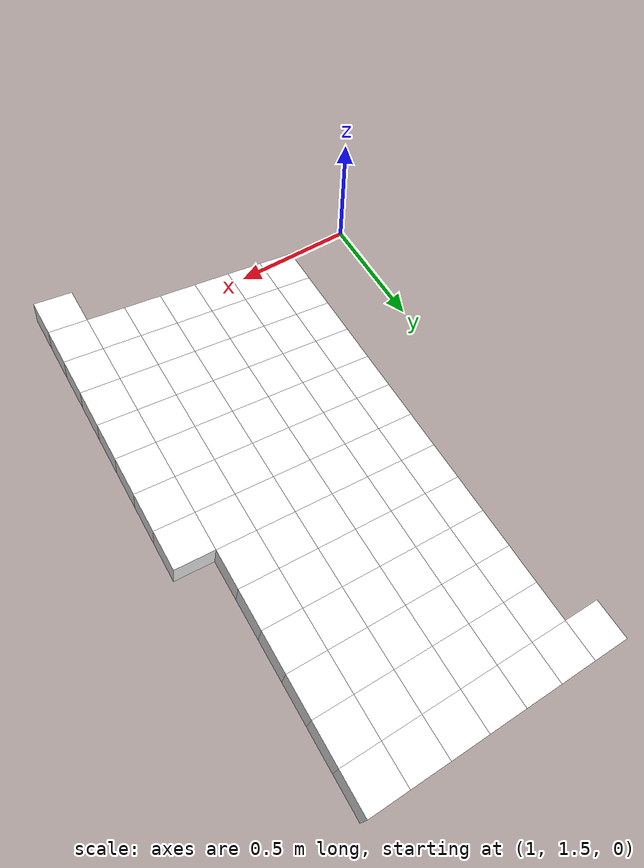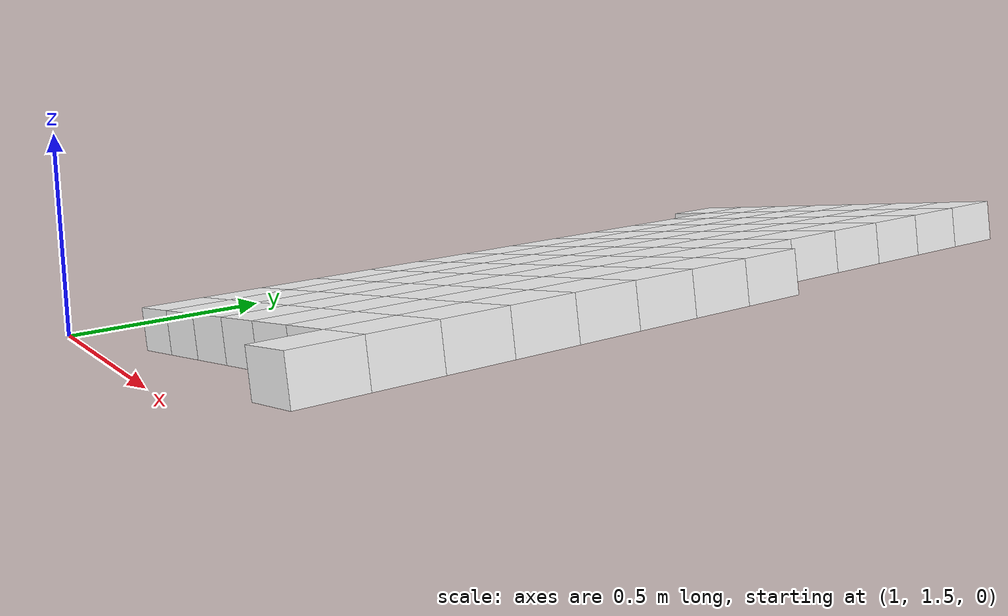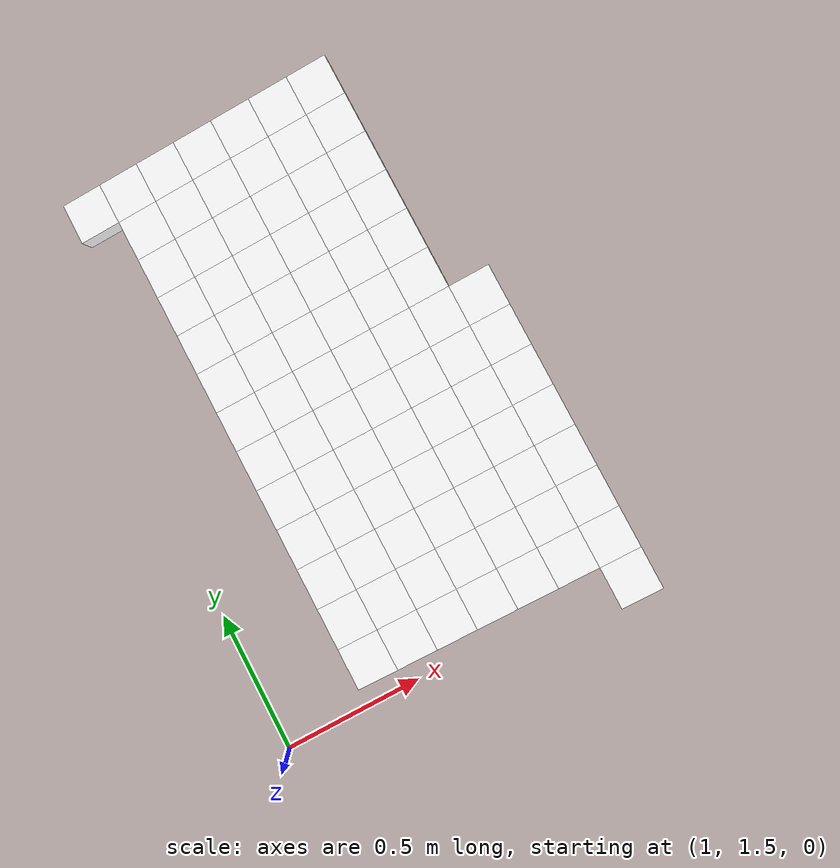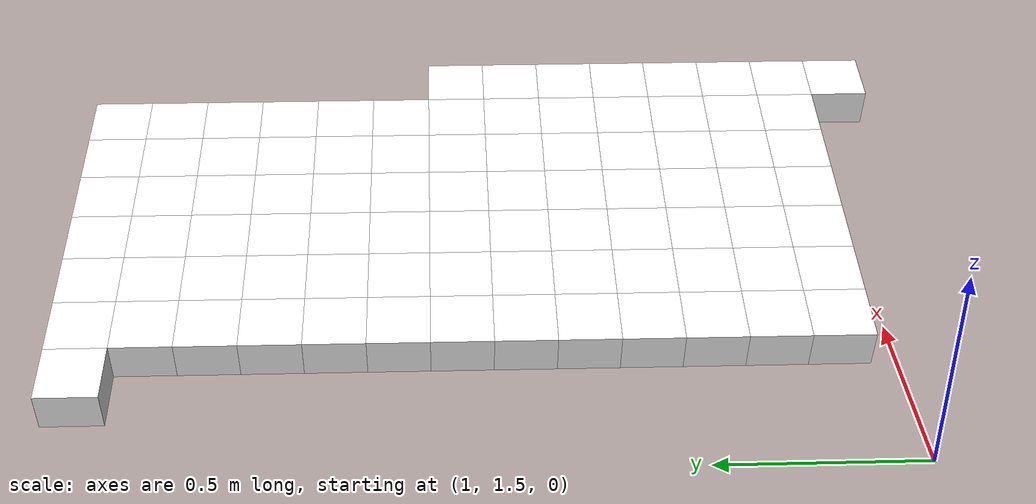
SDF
<sdf version="1.7">
 <world name="default">
  <include><uri>model://sun</uri></include>
  <model name="static_environment">
   <static>true</static>
   <link name="region_469">
    <pose>2.2721418591427653 1.5 0.24759631532031606 0.0 -0.175 0.0</pose>
    <collision name="region_469_collision">
     <geometry><box><size>0.15 0.15 0.1</size></box></geometry>
     <surface><friction><ode><mu>1.0</mu><mu2>1.0</mu2></ode></friction></surface>
    </collision>
    <visual name="region_469_visual">
     <geometry><box><size>0.15 0.15 0.1</size></box></geometry>
     <material><ambient>1.0 1.0 1.0 1.0</ambient><diffuse>1.0 1.0 1.0 1.0</diffuse></material>
    </visual>
   </link>
   <link name="region_473">
    <pose>1.3858879741283245 1.65 0.09089899148607966 0.0 -0.175 0.0</pose>
    <collision name="region_473_collision">
     <geometry><box><size>0.15 0.15 0.1</size></box></geometry>
     <surface><friction><ode><mu>1.0</mu><mu2>1.0</mu2></ode></friction></surface>
    </collision>
    <visual name="region_473_visual">
     <geometry><box><size>0.15 0.15 0.1</size></box></geometry>
     <material><ambient>1.0 1.0 1.0 1.0</ambient><diffuse>1.0 1.0 1.0 1.0</diffuse></material>
    </visual>
   </link>
   <link name="region_474">
    <pose>1.5335969549640645 1.65 0.11701521212511906 0.0 -0.175 0.0</pose>
    <collision name="region_474_collision">
     <geometry><box><size>0.15 0.15 0.1</size></box></geometry>
     <surface><friction><ode><mu>1.0</mu><mu2>1.0</mu2></ode></friction></surface>
    </collision>
    <visual name="region_474_visual">
     <geometry><box><size>0.15 0.15 0.1</size></box></geometry>
     <material><ambient>1.0 1.0 1.0 1.0</ambient><diffuse>1.0 1.0 1.0 1.0</diffuse></material>
    </visual>
   </link>
   <link name="region_475">
    <pose>1.6813059357998044 1.65 0.14313143276415835 0.0 -0.175 0.0</pose>
    <collision name="region_475_collision">
     <geometry><box><size>0.15 0.15 0.1</size></box></geometry>
     <surface><friction><ode><mu>1.0</mu><mu2>1.0</mu2></ode></friction></surface>
    </collision>
    <visual name="region_475_visual">
     <geometry><box><size>0.15 0.15 0.1</size></box></geometry>
     <material><ambient>1.0 1.0 1.0 1.0</ambient><diffuse>1.0 1.0 1.0 1.0</diffuse></material>
    </visual>
   </link>
   <link name="region_476">
    <pose>1.8290149166355443 1.65 0.16924765340319775 0.0 -0.175 0.0</pose>
    <collision name="region_476_collision">
     <geometry><box><size>0.15 0.15 0.1</size></box></geometry>
     <surface><friction><ode><mu>1.0</mu><mu2>1.0</mu2></ode></friction></surface>
    </collision>
    <visual name="region_476_visual">
     <geometry><box><size>0.15 0.15 0.1</size></box></geometry>
     <material><ambient>1.0 1.0 1.0 1.0</ambient><diffuse>1.0 1.0 1.0 1.0</diffuse></material>
    </visual>
   </link>
   <link name="region_477">
    <pose>1.9767238974712842 1.65 0.19536387404223715 0.0 -0.175 0.0</pose>
    <collision name="region_477_collision">
     <geometry><box><size>0.15 0.15 0.1</size></box></geometry>
     <surface><friction><ode><mu>1.0</mu><mu2>1.0</mu2></ode></friction></surface>
    </collision>
    <visual name="region_477_visual">
     <geometry><box><size>0.15 0.15 0.1</size></box></geometry>
     <material><ambient>1.0 1.0 1.0 1.0</ambient><diffuse>1.0 1.0 1.0 1.0</diffuse></material>
    </visual>
   </link>
   <link name="region_478">
    <pose>2.124432878307025 1.65 0.22148009468127655 0.0 -0.175 0.0</pose>
    <collision name="region_478_collision">
     <geometry><box><size>0.15 0.15 0.1</size></box></geometry>
     <surface><friction><ode><mu>1.0</mu><mu2>1.0</mu2></ode></friction></surface>
    </collision>
    <visual name="region_478_visual">
     <geometry><box><size>0.15 0.15 0.1</size></box></geometry>
     <material><ambient>1.0 1.0 1.0 1.0</ambient><diffuse>1.0 1.0 1.0 1.0</diffuse></material>
    </visual>
   </link>
   <link name="region_479">
    <pose>2.2721418591427653 1.65 0.24759631532031606 0.0 -0.175 0.0</pose>
    <collision name="region_479_collision">
     <geometry><box><size>0.15 0.15 0.1</size></box></geometry>
     <surface><friction><ode><mu>1.0</mu><mu2>1.0</mu2></ode></friction></surface>
    </collision>
    <visual name="region_479_visual">
     <geometry><box><size>0.15 0.15 0.1</size></box></geometry>
     <material><ambient>1.0 1.0 1.0 1.0</ambient><diffuse>1.0 1.0 1.0 1.0</diffuse></material>
    </visual>
   </link>
   <link name="region_483">
    <pose>1.3858879741283245 1.7999999999999998 0.09089899148607966 0.0 -0.175 0.0</pose>
    <collision name="region_483_collision">
     <geometry><box><size>0.15 0.15 0.1</size></box></geometry>
     <surface><friction><ode><mu>1.0</mu><mu2>1.0</mu2></ode></friction></surface>
    </collision>
    <visual name="region_483_visual">
     <geometry><box><size>0.15 0.15 0.1</size></box></geometry>
     <material><ambient>1.0 1.0 1.0 1.0</ambient><diffuse>1.0 1.0 1.0 1.0</diffuse></material>
    </visual>
   </link>
   <link name="region_484">
    <pose>1.5335969549640645 1.7999999999999998 0.11701521212511906 0.0 -0.175 0.0</pose>
    <collision name="region_484_collision">
     <geometry><box><size>0.15 0.15 0.1</size></box></geometry>
     <surface><friction><ode><mu>1.0</mu><mu2>1.0</mu2></ode></friction></surface>
    </collision>
    <visual name="region_484_visual">
     <geometry><box><size>0.15 0.15 0.1</size></box></geometry>
     <material><ambient>1.0 1.0 1.0 1.0</ambient><diffuse>1.0 1.0 1.0 1.0</diffuse></material>
    </visual>
   </link>
   <link name="region_485">
    <pose>1.6813059357998044 1.7999999999999998 0.14313143276415835 0.0 -0.175 0.0</pose>
    <collision name="region_485_collision">
     <geometry><box><size>0.15 0.15 0.1</size></box></geometry>
     <surface><friction><ode><mu>1.0</mu><mu2>1.0</mu2></ode></friction></surface>
    </collision>
    <visual name="region_485_visual">
     <geometry><box><size>0.15 0.15 0.1</size></box></geometry>
     <material><ambient>1.0 1.0 1.0 1.0</ambient><diffuse>1.0 1.0 1.0 1.0</diffuse></material>
    </visual>
   </link>
   <link name="region_486">
    <pose>1.8290149166355443 1.7999999999999998 0.16924765340319775 0.0 -0.175 0.0</pose>
    <collision name="region_486_collision">
     <geometry><box><size>0.15 0.15 0.1</size></box></geometry>
     <surface><friction><ode><mu>1.0</mu><mu2>1.0</mu2></ode></friction></surface>
    </collision>
    <visual name="region_486_visual">
     <geometry><box><size>0.15 0.15 0.1</size></box></geometry>
     <material><ambient>1.0 1.0 1.0 1.0</ambient><diffuse>1.0 1.0 1.0 1.0</diffuse></material>
    </visual>
   </link>
   <link name="region_487">
    <pose>1.9767238974712842 1.7999999999999998 0.19536387404223715 0.0 -0.175 0.0</pose>
    <collision name="region_487_collision">
     <geometry><box><size>0.15 0.15 0.1</size></box></geometry>
     <surface><friction><ode><mu>1.0</mu><mu2>1.0</mu2></ode></friction></surface>
    </collision>
    <visual name="region_487_visual">
     <geometry><box><size>0.15 0.15 0.1</size></box></geometry>
     <material><ambient>1.0 1.0 1.0 1.0</ambient><diffuse>1.0 1.0 1.0 1.0</diffuse></material>
    </visual>
   </link>
   <link name="region_488">
    <pose>2.124432878307025 1.7999999999999998 0.22148009468127655 0.0 -0.175 0.0</pose>
    <collision name="region_488_collision">
     <geometry><box><size>0.15 0.15 0.1</size></box></geometry>
     <surface><friction><ode><mu>1.0</mu><mu2>1.0</mu2></ode></friction></surface>
    </collision>
    <visual name="region_488_visual">
     <geometry><box><size>0.15 0.15 0.1</size></box></geometry>
     <material><ambient>1.0 1.0 1.0 1.0</ambient><diffuse>1.0 1.0 1.0 1.0</diffuse></material>
    </visual>
   </link>
   <link name="region_489">
    <pose>2.2721418591427653 1.7999999999999998 0.24759631532031606 0.0 -0.175 0.0</pose>
    <collision name="region_489_collision">
     <geometry><box><size>0.15 0.15 0.1</size></box></geometry>
     <surface><friction><ode><mu>1.0</mu><mu2>1.0</mu2></ode></friction></surface>
    </collision>
    <visual name="region_489_visual">
     <geometry><box><size>0.15 0.15 0.1</size></box></geometry>
     <material><ambient>1.0 1.0 1.0 1.0</ambient><diffuse>1.0 1.0 1.0 1.0</diffuse></material>
    </visual>
   </link>
   <link name="region_493">
    <pose>1.3858879741283245 1.9499999999999997 0.09089899148607966 0.0 -0.175 0.0</pose>
    <collision name="region_493_collision">
     <geometry><box><size>0.15 0.15 0.1</size></box></geometry>
     <surface><friction><ode><mu>1.0</mu><mu2>1.0</mu2></ode></friction></surface>
    </collision>
    <visual name="region_493_visual">
     <geometry><box><size>0.15 0.15 0.1</size></box></geometry>
     <material><ambient>1.0 1.0 1.0 1.0</ambient><diffuse>1.0 1.0 1.0 1.0</diffuse></material>
    </visual>
   </link>
   <link name="region_494">
    <pose>1.5335969549640645 1.9499999999999997 0.11701521212511906 0.0 -0.175 0.0</pose>
    <collision name="region_494_collision">
     <geometry><box><size>0.15 0.15 0.1</size></box></geometry>
     <surface><friction><ode><mu>1.0</mu><mu2>1.0</mu2></ode></friction></surface>
    </collision>
    <visual name="region_494_visual">
     <geometry><box><size>0.15 0.15 0.1</size></box></geometry>
     <material><ambient>1.0 1.0 1.0 1.0</ambient><diffuse>1.0 1.0 1.0 1.0</diffuse></material>
    </visual>
   </link>
   <link name="region_495">
    <pose>1.6813059357998044 1.9499999999999997 0.14313143276415835 0.0 -0.175 0.0</pose>
    <collision name="region_495_collision">
     <geometry><box><size>0.15 0.15 0.1</size></box></geometry>
     <surface><friction><ode><mu>1.0</mu><mu2>1.0</mu2></ode></friction></surface>
    </collision>
    <visual name="region_495_visual">
     <geometry><box><size>0.15 0.15 0.1</size></box></geometry>
     <material><ambient>1.0 1.0 1.0 1.0</ambient><diffuse>1.0 1.0 1.0 1.0</diffuse></material>
    </visual>
   </link>
   <link name="region_496">
    <pose>1.8290149166355443 1.9499999999999997 0.16924765340319775 0.0 -0.175 0.0</pose>
    <collision name="region_496_collision">
     <geometry><box><size>0.15 0.15 0.1</size></box></geometry>
     <surface><friction><ode><mu>1.0</mu><mu2>1.0</mu2></ode></friction></surface>
    </collision>
    <visual name="region_496_visual">
     <geometry><box><size>0.15 0.15 0.1</size></box></geometry>
     <material><ambient>1.0 1.0 1.0 1.0</ambient><diffuse>1.0 1.0 1.0 1.0</diffuse></material>
    </visual>
   </link>
   <link name="region_497">
    <pose>1.9767238974712842 1.9499999999999997 0.19536387404223715 0.0 -0.175 0.0</pose>
    <collision name="region_497_collision">
     <geometry><box><size>0.15 0.15 0.1</size></box></geometry>
     <surface><friction><ode><mu>1.0</mu><mu2>1.0</mu2></ode></friction></surface>
    </collision>
    <visual name="region_497_visual">
     <geometry><box><size>0.15 0.15 0.1</size></box></geometry>
     <material><ambient>1.0 1.0 1.0 1.0</ambient><diffuse>1.0 1.0 1.0 1.0</diffuse></material>
    </visual>
   </link>
   <link name="region_498">
    <pose>2.124432878307025 1.9499999999999997 0.22148009468127655 0.0 -0.175 0.0</pose>
    <collision name="region_498_collision">
     <geometry><box><size>0.15 0.15 0.1</size></box></geometry>
     <surface><friction><ode><mu>1.0</mu><mu2>1.0</mu2></ode></friction></surface>
    </collision>
    <visual name="region_498_visual">
     <geometry><box><size>0.15 0.15 0.1</size></box></geometry>
     <material><ambient>1.0 1.0 1.0 1.0</ambient><diffuse>1.0 1.0 1.0 1.0</diffuse></material>
    </visual>
   </link>
   <link name="region_499">
    <pose>2.2721418591427653 1.9499999999999997 0.24759631532031606 0.0 -0.175 0.0</pose>
    <collision name="region_499_collision">
     <geometry><box><size>0.15 0.15 0.1</size></box></geometry>
     <surface><friction><ode><mu>1.0</mu><mu2>1.0</mu2></ode></friction></surface>
    </collision>
    <visual name="region_499_visual">
     <geometry><box><size>0.15 0.15 0.1</size></box></geometry>
     <material><ambient>1.0 1.0 1.0 1.0</ambient><diffuse>1.0 1.0 1.0 1.0</diffuse></material>
    </visual>
   </link>
   <link name="region_503">
    <pose>1.3858879741283245 2.0999999999999996 0.09089899148607966 0.0 -0.175 0.0</pose>
    <collision name="region_503_collision">
     <geometry><box><size>0.15 0.15 0.1</size></box></geometry>
     <surface><friction><ode><mu>1.0</mu><mu2>1.0</mu2></ode></friction></surface>
    </collision>
    <visual name="region_503_visual">
     <geometry><box><size>0.15 0.15 0.1</size></box></geometry>
     <material><ambient>1.0 1.0 1.0 1.0</ambient><diffuse>1.0 1.0 1.0 1.0</diffuse></material>
    </visual>
   </link>
   <link name="region_504">
    <pose>1.5335969549640645 2.0999999999999996 0.11701521212511906 0.0 -0.175 0.0</pose>
    <collision name="region_504_collision">
     <geometry><box><size>0.15 0.15 0.1</size></box></geometry>
     <surface><friction><ode><mu>1.0</mu><mu2>1.0</mu2></ode></friction></surface>
    </collision>
    <visual name="region_504_visual">
     <geometry><box><size>0.15 0.15 0.1</size></box></geometry>
     <material><ambient>1.0 1.0 1.0 1.0</ambient><diffuse>1.0 1.0 1.0 1.0</diffuse></material>
    </visual>
   </link>
   <link name="region_505">
    <pose>1.6813059357998044 2.0999999999999996 0.14313143276415835 0.0 -0.175 0.0</pose>
    <collision name="region_505_collision">
     <geometry><box><size>0.15 0.15 0.1</size></box></geometry>
     <surface><friction><ode><mu>1.0</mu><mu2>1.0</mu2></ode></friction></surface>
    </collision>
    <visual name="region_505_visual">
     <geometry><box><size>0.15 0.15 0.1</size></box></geometry>
     <material><ambient>1.0 1.0 1.0 1.0</ambient><diffuse>1.0 1.0 1.0 1.0</diffuse></material>
    </visual>
   </link>
   <link name="region_506">
    <pose>1.8290149166355443 2.0999999999999996 0.16924765340319775 0.0 -0.175 0.0</pose>
    <collision name="region_506_collision">
     <geometry><box><size>0.15 0.15 0.1</size></box></geometry>
     <surface><friction><ode><mu>1.0</mu><mu2>1.0</mu2></ode></friction></surface>
    </collision>
    <visual name="region_506_visual">
     <geometry><box><size>0.15 0.15 0.1</size></box></geometry>
     <material><ambient>1.0 1.0 1.0 1.0</ambient><diffuse>1.0 1.0 1.0 1.0</diffuse></material>
    </visual>
   </link>
   <link name="region_507">
    <pose>1.9767238974712842 2.0999999999999996 0.19536387404223715 0.0 -0.175 0.0</pose>
    <collision name="region_507_collision">
     <geometry><box><size>0.15 0.15 0.1</size></box></geometry>
     <surface><friction><ode><mu>1.0</mu><mu2>1.0</mu2></ode></friction></surface>
    </collision>
    <visual name="region_507_visual">
     <geometry><box><size>0.15 0.15 0.1</size></box></geometry>
     <material><ambient>1.0 1.0 1.0 1.0</ambient><diffuse>1.0 1.0 1.0 1.0</diffuse></material>
    </visual>
   </link>
   <link name="region_508">
    <pose>2.124432878307025 2.0999999999999996 0.22148009468127655 0.0 -0.175 0.0</pose>
    <collision name="region_508_collision">
     <geometry><box><size>0.15 0.15 0.1</size></box></geometry>
     <surface><friction><ode><mu>1.0</mu><mu2>1.0</mu2></ode></friction></surface>
    </collision>
    <visual name="region_508_visual">
     <geometry><box><size>0.15 0.15 0.1</size></box></geometry>
     <material><ambient>1.0 1.0 1.0 1.0</ambient><diffuse>1.0 1.0 1.0 1.0</diffuse></material>
    </visual>
   </link>
   <link name="region_509">
    <pose>2.2721418591427653 2.0999999999999996 0.24759631532031606 0.0 -0.175 0.0</pose>
    <collision name="region_509_collision">
     <geometry><box><size>0.15 0.15 0.1</size></box></geometry>
     <surface><friction><ode><mu>1.0</mu><mu2>1.0</mu2></ode></friction></surface>
    </collision>
    <visual name="region_509_visual">
     <geometry><box><size>0.15 0.15 0.1</size></box></geometry>
     <material><ambient>1.0 1.0 1.0 1.0</ambient><diffuse>1.0 1.0 1.0 1.0</diffuse></material>
    </visual>
   </link>
   <link name="region_513">
    <pose>1.3858879741283245 2.2499999999999996 0.09089899148607966 0.0 -0.175 0.0</pose>
    <collision name="region_513_collision">
     <geometry><box><size>0.15 0.15 0.1</size></box></geometry>
     <surface><friction><ode><mu>1.0</mu><mu2>1.0</mu2></ode></friction></surface>
    </collision>
    <visual name="region_513_visual">
     <geometry><box><size>0.15 0.15 0.1</size></box></geometry>
     <material><ambient>1.0 1.0 1.0 1.0</ambient><diffuse>1.0 1.0 1.0 1.0</diffuse></material>
    </visual>
   </link>
   <link name="region_514">
    <pose>1.5335969549640645 2.2499999999999996 0.11701521212511906 0.0 -0.175 0.0</pose>
    <collision name="region_514_collision">
     <geometry><box><size>0.15 0.15 0.1</size></box></geometry>
     <surface><friction><ode><mu>1.0</mu><mu2>1.0</mu2></ode></friction></surface>
    </collision>
    <visual name="region_514_visual">
     <geometry><box><size>0.15 0.15 0.1</size></box></geometry>
     <material><ambient>1.0 1.0 1.0 1.0</ambient><diffuse>1.0 1.0 1.0 1.0</diffuse></material>
    </visual>
   </link>
   <link name="region_515">
    <pose>1.6813059357998044 2.2499999999999996 0.14313143276415835 0.0 -0.175 0.0</pose>
    <collision name="region_515_collision">
     <geometry><box><size>0.15 0.15 0.1</size></box></geometry>
     <surface><friction><ode><mu>1.0</mu><mu2>1.0</mu2></ode></friction></surface>
    </collision>
    <visual name="region_515_visual">
     <geometry><box><size>0.15 0.15 0.1</size></box></geometry>
     <material><ambient>1.0 1.0 1.0 1.0</ambient><diffuse>1.0 1.0 1.0 1.0</diffuse></material>
    </visual>
   </link>
   <link name="region_516">
    <pose>1.8290149166355443 2.2499999999999996 0.16924765340319775 0.0 -0.175 0.0</pose>
    <collision name="region_516_collision">
     <geometry><box><size>0.15 0.15 0.1</size></box></geometry>
     <surface><friction><ode><mu>1.0</mu><mu2>1.0</mu2></ode></friction></surface>
    </collision>
    <visual name="region_516_visual">
     <geometry><box><size>0.15 0.15 0.1</size></box></geometry>
     <material><ambient>1.0 1.0 1.0 1.0</ambient><diffuse>1.0 1.0 1.0 1.0</diffuse></material>
    </visual>
   </link>
   <link name="region_517">
    <pose>1.9767238974712842 2.2499999999999996 0.19536387404223715 0.0 -0.175 0.0</pose>
    <collision name="region_517_collision">
     <geometry><box><size>0.15 0.15 0.1</size></box></geometry>
     <surface><friction><ode><mu>1.0</mu><mu2>1.0</mu2></ode></friction></surface>
    </collision>
    <visual name="region_517_visual">
     <geometry><box><size>0.15 0.15 0.1</size></box></geometry>
     <material><ambient>1.0 1.0 1.0 1.0</ambient><diffuse>1.0 1.0 1.0 1.0</diffuse></material>
    </visual>
   </link>
   <link name="region_518">
    <pose>2.124432878307025 2.2499999999999996 0.22148009468127655 0.0 -0.175 0.0</pose>
    <collision name="region_518_collision">
     <geometry><box><size>0.15 0.15 0.1</size></box></geometry>
     <surface><friction><ode><mu>1.0</mu><mu2>1.0</mu2></ode></friction></surface>
    </collision>
    <visual name="region_518_visual">
     <geometry><box><size>0.15 0.15 0.1</size></box></geometry>
     <material><ambient>1.0 1.0 1.0 1.0</ambient><diffuse>1.0 1.0 1.0 1.0</diffuse></material>
    </visual>
   </link>
   <link name="region_519">
    <pose>2.2721418591427653 2.2499999999999996 0.24759631532031606 0.0 -0.175 0.0</pose>
    <collision name="region_519_collision">
     <geometry><box><size>0.15 0.15 0.1</size></box></geometry>
     <surface><friction><ode><mu>1.0</mu><mu2>1.0</mu2></ode></friction></surface>
    </collision>
    <visual name="region_519_visual">
     <geometry><box><size>0.15 0.15 0.1</size></box></geometry>
     <material><ambient>1.0 1.0 1.0 1.0</ambient><diffuse>1.0 1.0 1.0 1.0</diffuse></material>
    </visual>
   </link>
   <link name="region_523">
    <pose>1.3858879741283245 2.3999999999999995 0.09089899148607966 0.0 -0.175 0.0</pose>
    <collision name="region_523_collision">
     <geometry><box><size>0.15 0.15 0.1</size></box></geometry>
     <surface><friction><ode><mu>1.0</mu><mu2>1.0</mu2></ode></friction></surface>
    </collision>
    <visual name="region_523_visual">
     <geometry><box><size>0.15 0.15 0.1</size></box></geometry>
     <material><ambient>1.0 1.0 1.0 1.0</ambient><diffuse>1.0 1.0 1.0 1.0</diffuse></material>
    </visual>
   </link>
   <link name="region_524">
    <pose>1.5335969549640645 2.3999999999999995 0.11701521212511906 0.0 -0.175 0.0</pose>
    <collision name="region_524_collision">
     <geometry><box><size>0.15 0.15 0.1</size></box></geometry>
     <surface><friction><ode><mu>1.0</mu><mu2>1.0</mu2></ode></friction></surface>
    </collision>
    <visual name="region_524_visual">
     <geometry><box><size>0.15 0.15 0.1</size></box></geometry>
     <material><ambient>1.0 1.0 1.0 1.0</ambient><diffuse>1.0 1.0 1.0 1.0</diffuse></material>
    </visual>
   </link>
   <link name="region_525">
    <pose>1.6813059357998044 2.3999999999999995 0.14313143276415835 0.0 -0.175 0.0</pose>
    <collision name="region_525_collision">
     <geometry><box><size>0.15 0.15 0.1</size></box></geometry>
     <surface><friction><ode><mu>1.0</mu><mu2>1.0</mu2></ode></friction></surface>
    </collision>
    <visual name="region_525_visual">
     <geometry><box><size>0.15 0.15 0.1</size></box></geometry>
     <material><ambient>1.0 1.0 1.0 1.0</ambient><diffuse>1.0 1.0 1.0 1.0</diffuse></material>
    </visual>
   </link>
   <link name="region_526">
    <pose>1.8290149166355443 2.3999999999999995 0.16924765340319775 0.0 -0.175 0.0</pose>
    <collision name="region_526_collision">
     <geometry><box><size>0.15 0.15 0.1</size></box></geometry>
     <surface><friction><ode><mu>1.0</mu><mu2>1.0</mu2></ode></friction></surface>
    </collision>
    <visual name="region_526_visual">
     <geometry><box><size>0.15 0.15 0.1</size></box></geometry>
     <material><ambient>1.0 1.0 1.0 1.0</ambient><diffuse>1.0 1.0 1.0 1.0</diffuse></material>
    </visual>
   </link>
   <link name="region_527">
    <pose>1.9767238974712842 2.3999999999999995 0.19536387404223715 0.0 -0.175 0.0</pose>
    <collision name="region_527_collision">
     <geometry><box><size>0.15 0.15 0.1</size></box></geometry>
     <surface><friction><ode><mu>1.0</mu><mu2>1.0</mu2></ode></friction></surface>
    </collision>
    <visual name="region_527_visual">
     <geometry><box><size>0.15 0.15 0.1</size></box></geometry>
     <material><ambient>1.0 1.0 1.0 1.0</ambient><diffuse>1.0 1.0 1.0 1.0</diffuse></material>
    </visual>
   </link>
   <link name="region_528">
    <pose>2.124432878307025 2.3999999999999995 0.22148009468127655 0.0 -0.175 0.0</pose>
    <collision name="region_528_collision">
     <geometry><box><size>0.15 0.15 0.1</size></box></geometry>
     <surface><friction><ode><mu>1.0</mu><mu2>1.0</mu2></ode></friction></surface>
    </collision>
    <visual name="region_528_visual">
     <geometry><box><size>0.15 0.15 0.1</size></box></geometry>
     <material><ambient>1.0 1.0 1.0 1.0</ambient><diffuse>1.0 1.0 1.0 1.0</diffuse></material>
    </visual>
   </link>
   <link name="region_529">
    <pose>2.2721418591427653 2.3999999999999995 0.24759631532031606 0.0 -0.175 0.0</pose>
    <collision name="region_529_collision">
     <geometry><box><size>0.15 0.15 0.1</size></box></geometry>
     <surface><friction><ode><mu>1.0</mu><mu2>1.0</mu2></ode></friction></surface>
    </collision>
    <visual name="region_529_visual">
     <geometry><box><size>0.15 0.15 0.1</size></box></geometry>
     <material><ambient>1.0 1.0 1.0 1.0</ambient><diffuse>1.0 1.0 1.0 1.0</diffuse></material>
    </visual>
   </link>
   <link name="region_533">
    <pose>1.3858879741283245 2.5499999999999994 0.09089899148607966 0.0 -0.175 0.0</pose>
    <collision name="region_533_collision">
     <geometry><box><size>0.15 0.15 0.1</size></box></geometry>
     <surface><friction><ode><mu>1.0</mu><mu2>1.0</mu2></ode></friction></surface>
    </collision>
    <visual name="region_533_visual">
     <geometry><box><size>0.15 0.15 0.1</size></box></geometry>
     <material><ambient>1.0 1.0 1.0 1.0</ambient><diffuse>1.0 1.0 1.0 1.0</diffuse></material>
    </visual>
   </link>
   <link name="region_534">
    <pose>1.5335969549640645 2.5499999999999994 0.11701521212511906 0.0 -0.175 0.0</pose>
    <collision name="region_534_collision">
     <geometry><box><size>0.15 0.15 0.1</size></box></geometry>
     <surface><friction><ode><mu>1.0</mu><mu2>1.0</mu2></ode></friction></surface>
    </collision>
    <visual name="region_534_visual">
     <geometry><box><size>0.15 0.15 0.1</size></box></geometry>
     <material><ambient>1.0 1.0 1.0 1.0</ambient><diffuse>1.0 1.0 1.0 1.0</diffuse></material>
    </visual>
   </link>
   <link name="region_535">
    <pose>1.6813059357998044 2.5499999999999994 0.14313143276415835 0.0 -0.175 0.0</pose>
    <collision name="region_535_collision">
     <geometry><box><size>0.15 0.15 0.1</size></box></geometry>
     <surface><friction><ode><mu>1.0</mu><mu2>1.0</mu2></ode></friction></surface>
    </collision>
    <visual name="region_535_visual">
     <geometry><box><size>0.15 0.15 0.1</size></box></geometry>
     <material><ambient>1.0 1.0 1.0 1.0</ambient><diffuse>1.0 1.0 1.0 1.0</diffuse></material>
    </visual>
   </link>
   <link name="region_536">
    <pose>1.8290149166355443 2.5499999999999994 0.16924765340319775 0.0 -0.175 0.0</pose>
    <collision name="region_536_collision">
     <geometry><box><size>0.15 0.15 0.1</size></box></geometry>
     <surface><friction><ode><mu>1.0</mu><mu2>1.0</mu2></ode></friction></surface>
    </collision>
    <visual name="region_536_visual">
     <geometry><box><size>0.15 0.15 0.1</size></box></geometry>
     <material><ambient>1.0 1.0 1.0 1.0</ambient><diffuse>1.0 1.0 1.0 1.0</diffuse></material>
    </visual>
   </link>
   <link name="region_537">
    <pose>1.9767238974712842 2.5499999999999994 0.19536387404223715 0.0 -0.175 0.0</pose>
    <collision name="region_537_collision">
     <geometry><box><size>0.15 0.15 0.1</size></box></geometry>
     <surface><friction><ode><mu>1.0</mu><mu2>1.0</mu2></ode></friction></surface>
    </collision>
    <visual name="region_537_visual">
     <geometry><box><size>0.15 0.15 0.1</size></box></geometry>
     <material><ambient>1.0 1.0 1.0 1.0</ambient><diffuse>1.0 1.0 1.0 1.0</diffuse></material>
    </visual>
   </link>
   <link name="region_538">
    <pose>2.124432878307025 2.5499999999999994 0.22148009468127655 0.0 -0.175 0.0</pose>
    <collision name="region_538_collision">
     <geometry><box><size>0.15 0.15 0.1</size></box></geometry>
     <surface><friction><ode><mu>1.0</mu><mu2>1.0</mu2></ode></friction></surface>
    </collision>
    <visual name="region_538_visual">
     <geometry><box><size>0.15 0.15 0.1</size></box></geometry>
     <material><ambient>1.0 1.0 1.0 1.0</ambient><diffuse>1.0 1.0 1.0 1.0</diffuse></material>
    </visual>
   </link>
   <link name="region_539">
    <pose>2.2721418591427653 2.5499999999999994 0.24759631532031606 0.0 -0.175 0.0</pose>
    <collision name="region_539_collision">
     <geometry><box><size>0.15 0.15 0.1</size></box></geometry>
     <surface><friction><ode><mu>1.0</mu><mu2>1.0</mu2></ode></friction></surface>
    </collision>
    <visual name="region_539_visual">
     <geometry><box><size>0.15 0.15 0.1</size></box></geometry>
     <material><ambient>1.0 1.0 1.0 1.0</ambient><diffuse>1.0 1.0 1.0 1.0</diffuse></material>
    </visual>
   </link>
   <link name="region_543">
    <pose>1.3858879741283245 2.6999999999999997 0.09089899148607966 0.0 -0.175 0.0</pose>
    <collision name="region_543_collision">
     <geometry><box><size>0.15 0.15 0.1</size></box></geometry>
     <surface><friction><ode><mu>1.0</mu><mu2>1.0</mu2></ode></friction></surface>
    </collision>
    <visual name="region_543_visual">
     <geometry><box><size>0.15 0.15 0.1</size></box></geometry>
     <material><ambient>1.0 1.0 1.0 1.0</ambient><diffuse>1.0 1.0 1.0 1.0</diffuse></material>
    </visual>
   </link>
   <link name="region_544">
    <pose>1.5335969549640645 2.6999999999999997 0.11701521212511906 0.0 -0.175 0.0</pose>
    <collision name="region_544_collision">
     <geometry><box><size>0.15 0.15 0.1</size></box></geometry>
     <surface><friction><ode><mu>1.0</mu><mu2>1.0</mu2></ode></friction></surface>
    </collision>
    <visual name="region_544_visual">
     <geometry><box><size>0.15 0.15 0.1</size></box></geometry>
     <material><ambient>1.0 1.0 1.0 1.0</ambient><diffuse>1.0 1.0 1.0 1.0</diffuse></material>
    </visual>
   </link>
   <link name="region_545">
    <pose>1.6813059357998044 2.6999999999999997 0.14313143276415835 0.0 -0.175 0.0</pose>
    <collision name="region_545_collision">
     <geometry><box><size>0.15 0.15 0.1</size></box></geometry>
     <surface><friction><ode><mu>1.0</mu><mu2>1.0</mu2></ode></friction></surface>
    </collision>
    <visual name="region_545_visual">
     <geometry><box><size>0.15 0.15 0.1</size></box></geometry>
     <material><ambient>1.0 1.0 1.0 1.0</ambient><diffuse>1.0 1.0 1.0 1.0</diffuse></material>
    </visual>
   </link>
   <link name="region_546">
    <pose>1.8290149166355443 2.6999999999999997 0.16924765340319775 0.0 -0.175 0.0</pose>
    <collision name="region_546_collision">
     <geometry><box><size>0.15 0.15 0.1</size></box></geometry>
     <surface><friction><ode><mu>1.0</mu><mu2>1.0</mu2></ode></friction></surface>
    </collision>
    <visual name="region_546_visual">
     <geometry><box><size>0.15 0.15 0.1</size></box></geometry>
     <material><ambient>1.0 1.0 1.0 1.0</ambient><diffuse>1.0 1.0 1.0 1.0</diffuse></material>
    </visual>
   </link>
   <link name="region_547">
    <pose>1.9767238974712842 2.6999999999999997 0.19536387404223715 0.0 -0.175 0.0</pose>
    <collision name="region_547_collision">
     <geometry><box><size>0.15 0.15 0.1</size></box></geometry>
     <surface><friction><ode><mu>1.0</mu><mu2>1.0</mu2></ode></friction></surface>
    </collision>
    <visual name="region_547_visual">
     <geometry><box><size>0.15 0.15 0.1</size></box></geometry>
     <material><ambient>1.0 1.0 1.0 1.0</ambient><diffuse>1.0 1.0 1.0 1.0</diffuse></material>
    </visual>
   </link>
   <link name="region_548">
    <pose>2.124432878307025 2.6999999999999997 0.22148009468127655 0.0 -0.175 0.0</pose>
    <collision name="region_548_collision">
     <geometry><box><size>0.15 0.15 0.1</size></box></geometry>
     <surface><friction><ode><mu>1.0</mu><mu2>1.0</mu2></ode></friction></surface>
    </collision>
    <visual name="region_548_visual">
     <geometry><box><size>0.15 0.15 0.1</size></box></geometry>
     <material><ambient>1.0 1.0 1.0 1.0</ambient><diffuse>1.0 1.0 1.0 1.0</diffuse></material>
    </visual>
   </link>
   <link name="region_553">
    <pose>1.3858879741283245 2.8499999999999996 0.09089899148607966 0.0 -0.175 0.0</pose>
    <collision name="region_553_collision">
     <geometry><box><size>0.15 0.15 0.1</size></box></geometry>
     <surface><friction><ode><mu>1.0</mu><mu2>1.0</mu2></ode></friction></surface>
    </collision>
    <visual name="region_553_visual">
     <geometry><box><size>0.15 0.15 0.1</size></box></geometry>
     <material><ambient>1.0 1.0 1.0 1.0</ambient><diffuse>1.0 1.0 1.0 1.0</diffuse></material>
    </visual>
   </link>
   <link name="region_554">
    <pose>1.5335969549640645 2.8499999999999996 0.11701521212511906 0.0 -0.175 0.0</pose>
    <collision name="region_554_collision">
     <geometry><box><size>0.15 0.15 0.1</size></box></geometry>
     <surface><friction><ode><mu>1.0</mu><mu2>1.0</mu2></ode></friction></surface>
    </collision>
    <visual name="region_554_visual">
     <geometry><box><size>0.15 0.15 0.1</size></box></geometry>
     <material><ambient>1.0 1.0 1.0 1.0</ambient><diffuse>1.0 1.0 1.0 1.0</diffuse></material>
    </visual>
   </link>
   <link name="region_555">
    <pose>1.6813059357998044 2.8499999999999996 0.14313143276415835 0.0 -0.175 0.0</pose>
    <collision name="region_555_collision">
     <geometry><box><size>0.15 0.15 0.1</size></box></geometry>
     <surface><friction><ode><mu>1.0</mu><mu2>1.0</mu2></ode></friction></surface>
    </collision>
    <visual name="region_555_visual">
     <geometry><box><size>0.15 0.15 0.1</size></box></geometry>
     <material><ambient>1.0 1.0 1.0 1.0</ambient><diffuse>1.0 1.0 1.0 1.0</diffuse></material>
    </visual>
   </link>
   <link name="region_556">
    <pose>1.8290149166355443 2.8499999999999996 0.16924765340319775 0.0 -0.175 0.0</pose>
    <collision name="region_556_collision">
     <geometry><box><size>0.15 0.15 0.1</size></box></geometry>
     <surface><friction><ode><mu>1.0</mu><mu2>1.0</mu2></ode></friction></surface>
    </collision>
    <visual name="region_556_visual">
     <geometry><box><size>0.15 0.15 0.1</size></box></geometry>
     <material><ambient>1.0 1.0 1.0 1.0</ambient><diffuse>1.0 1.0 1.0 1.0</diffuse></material>
    </visual>
   </link>
   <link name="region_557">
    <pose>1.9767238974712842 2.8499999999999996 0.19536387404223715 0.0 -0.175 0.0</pose>
    <collision name="region_557_collision">
     <geometry><box><size>0.15 0.15 0.1</size></box></geometry>
     <surface><friction><ode><mu>1.0</mu><mu2>1.0</mu2></ode></friction></surface>
    </collision>
    <visual name="region_557_visual">
     <geometry><box><size>0.15 0.15 0.1</size></box></geometry>
     <material><ambient>1.0 1.0 1.0 1.0</ambient><diffuse>1.0 1.0 1.0 1.0</diffuse></material>
    </visual>
   </link>
   <link name="region_558">
    <pose>2.124432878307025 2.8499999999999996 0.22148009468127655 0.0 -0.175 0.0</pose>
    <collision name="region_558_collision">
     <geometry><box><size>0.15 0.15 0.1</size></box></geometry>
     <surface><friction><ode><mu>1.0</mu><mu2>1.0</mu2></ode></friction></surface>
    </collision>
    <visual name="region_558_visual">
     <geometry><box><size>0.15 0.15 0.1</size></box></geometry>
     <material><ambient>1.0 1.0 1.0 1.0</ambient><diffuse>1.0 1.0 1.0 1.0</diffuse></material>
    </visual>
   </link>
   <link name="region_563">
    <pose>1.3858879741283245 2.9999999999999996 0.09089899148607966 0.0 -0.175 0.0</pose>
    <collision name="region_563_collision">
     <geometry><box><size>0.15 0.15 0.1</size></box></geometry>
     <surface><friction><ode><mu>1.0</mu><mu2>1.0</mu2></ode></friction></surface>
    </collision>
    <visual name="region_563_visual">
     <geometry><box><size>0.15 0.15 0.1</size></box></geometry>
     <material><ambient>1.0 1.0 1.0 1.0</ambient><diffuse>1.0 1.0 1.0 1.0</diffuse></material>
    </visual>
   </link>
   <link name="region_564">
    <pose>1.5335969549640645 2.9999999999999996 0.11701521212511906 0.0 -0.175 0.0</pose>
    <collision name="region_564_collision">
     <geometry><box><size>0.15 0.15 0.1</size></box></geometry>
     <surface><friction><ode><mu>1.0</mu><mu2>1.0</mu2></ode></friction></surface>
    </collision>
    <visual name="region_564_visual">
     <geometry><box><size>0.15 0.15 0.1</size></box></geometry>
     <material><ambient>1.0 1.0 1.0 1.0</ambient><diffuse>1.0 1.0 1.0 1.0</diffuse></material>
    </visual>
   </link>
   <link name="region_565">
    <pose>1.6813059357998044 2.9999999999999996 0.14313143276415835 0.0 -0.175 0.0</pose>
    <collision name="region_565_collision">
     <geometry><box><size>0.15 0.15 0.1</size></box></geometry>
     <surface><friction><ode><mu>1.0</mu><mu2>1.0</mu2></ode></friction></surface>
    </collision>
    <visual name="region_565_visual">
     <geometry><box><size>0.15 0.15 0.1</size></box></geometry>
     <material><ambient>1.0 1.0 1.0 1.0</ambient><diffuse>1.0 1.0 1.0 1.0</diffuse></material>
    </visual>
   </link>
   <link name="region_566">
    <pose>1.8290149166355443 2.9999999999999996 0.16924765340319775 0.0 -0.175 0.0</pose>
    <collision name="region_566_collision">
     <geometry><box><size>0.15 0.15 0.1</size></box></geometry>
     <surface><friction><ode><mu>1.0</mu><mu2>1.0</mu2></ode></friction></surface>
    </collision>
    <visual name="region_566_visual">
     <geometry><box><size>0.15 0.15 0.1</size></box></geometry>
     <material><ambient>1.0 1.0 1.0 1.0</ambient><diffuse>1.0 1.0 1.0 1.0</diffuse></material>
    </visual>
   </link>
   <link name="region_567">
    <pose>1.9767238974712842 2.9999999999999996 0.19536387404223715 0.0 -0.175 0.0</pose>
    <collision name="region_567_collision">
     <geometry><box><size>0.15 0.15 0.1</size></box></geometry>
     <surface><friction><ode><mu>1.0</mu><mu2>1.0</mu2></ode></friction></surface>
    </collision>
    <visual name="region_567_visual">
     <geometry><box><size>0.15 0.15 0.1</size></box></geometry>
     <material><ambient>1.0 1.0 1.0 1.0</ambient><diffuse>1.0 1.0 1.0 1.0</diffuse></material>
    </visual>
   </link>
   <link name="region_568">
    <pose>2.124432878307025 2.9999999999999996 0.22148009468127655 0.0 -0.175 0.0</pose>
    <collision name="region_568_collision">
     <geometry><box><size>0.15 0.15 0.1</size></box></geometry>
     <surface><friction><ode><mu>1.0</mu><mu2>1.0</mu2></ode></friction></surface>
    </collision>
    <visual name="region_568_visual">
     <geometry><box><size>0.15 0.15 0.1</size></box></geometry>
     <material><ambient>1.0 1.0 1.0 1.0</ambient><diffuse>1.0 1.0 1.0 1.0</diffuse></material>
    </visual>
   </link>
   <link name="region_573">
    <pose>1.3858879741283245 3.1499999999999995 0.09089899148607966 0.0 -0.175 0.0</pose>
    <collision name="region_573_collision">
     <geometry><box><size>0.15 0.15 0.1</size></box></geometry>
     <surface><friction><ode><mu>1.0</mu><mu2>1.0</mu2></ode></friction></surface>
    </collision>
    <visual name="region_573_visual">
     <geometry><box><size>0.15 0.15 0.1</size></box></geometry>
     <material><ambient>1.0 1.0 1.0 1.0</ambient><diffuse>1.0 1.0 1.0 1.0</diffuse></material>
    </visual>
   </link>
   <link name="region_574">
    <pose>1.5335969549640645 3.1499999999999995 0.11701521212511906 0.0 -0.175 0.0</pose>
    <collision name="region_574_collision">
     <geometry><box><size>0.15 0.15 0.1</size></box></geometry>
     <surface><friction><ode><mu>1.0</mu><mu2>1.0</mu2></ode></friction></surface>
    </collision>
    <visual name="region_574_visual">
     <geometry><box><size>0.15 0.15 0.1</size></box></geometry>
     <material><ambient>1.0 1.0 1.0 1.0</ambient><diffuse>1.0 1.0 1.0 1.0</diffuse></material>
    </visual>
   </link>
   <link name="region_575">
    <pose>1.6813059357998044 3.1499999999999995 0.14313143276415835 0.0 -0.175 0.0</pose>
    <collision name="region_575_collision">
     <geometry><box><size>0.15 0.15 0.1</size></box></geometry>
     <surface><friction><ode><mu>1.0</mu><mu2>1.0</mu2></ode></friction></surface>
    </collision>
    <visual name="region_575_visual">
     <geometry><box><size>0.15 0.15 0.1</size></box></geometry>
     <material><ambient>1.0 1.0 1.0 1.0</ambient><diffuse>1.0 1.0 1.0 1.0</diffuse></material>
    </visual>
   </link>
   <link name="region_576">
    <pose>1.8290149166355443 3.1499999999999995 0.16924765340319775 0.0 -0.175 0.0</pose>
    <collision name="region_576_collision">
     <geometry><box><size>0.15 0.15 0.1</size></box></geometry>
     <surface><friction><ode><mu>1.0</mu><mu2>1.0</mu2></ode></friction></surface>
    </collision>
    <visual name="region_576_visual">
     <geometry><box><size>0.15 0.15 0.1</size></box></geometry>
     <material><ambient>1.0 1.0 1.0 1.0</ambient><diffuse>1.0 1.0 1.0 1.0</diffuse></material>
    </visual>
   </link>
   <link name="region_577">
    <pose>1.9767238974712842 3.1499999999999995 0.19536387404223715 0.0 -0.175 0.0</pose>
    <collision name="region_577_collision">
     <geometry><box><size>0.15 0.15 0.1</size></box></geometry>
     <surface><friction><ode><mu>1.0</mu><mu2>1.0</mu2></ode></friction></surface>
    </collision>
    <visual name="region_577_visual">
     <geometry><box><size>0.15 0.15 0.1</size></box></geometry>
     <material><ambient>1.0 1.0 1.0 1.0</ambient><diffuse>1.0 1.0 1.0 1.0</diffuse></material>
    </visual>
   </link>
   <link name="region_578">
    <pose>2.124432878307025 3.1499999999999995 0.22148009468127655 0.0 -0.175 0.0</pose>
    <collision name="region_578_collision">
     <geometry><box><size>0.15 0.15 0.1</size></box></geometry>
     <surface><friction><ode><mu>1.0</mu><mu2>1.0</mu2></ode></friction></surface>
    </collision>
    <visual name="region_578_visual">
     <geometry><box><size>0.15 0.15 0.1</size></box></geometry>
     <material><ambient>1.0 1.0 1.0 1.0</ambient><diffuse>1.0 1.0 1.0 1.0</diffuse></material>
    </visual>
   </link>
   <link name="region_583">
    <pose>1.3858879741283245 3.2999999999999994 0.09089899148607966 0.0 -0.175 0.0</pose>
    <collision name="region_583_collision">
     <geometry><box><size>0.15 0.15 0.1</size></box></geometry>
     <surface><friction><ode><mu>1.0</mu><mu2>1.0</mu2></ode></friction></surface>
    </collision>
    <visual name="region_583_visual">
     <geometry><box><size>0.15 0.15 0.1</size></box></geometry>
     <material><ambient>1.0 1.0 1.0 1.0</ambient><diffuse>1.0 1.0 1.0 1.0</diffuse></material>
    </visual>
   </link>
   <link name="region_584">
    <pose>1.5335969549640645 3.2999999999999994 0.11701521212511906 0.0 -0.175 0.0</pose>
    <collision name="region_584_collision">
     <geometry><box><size>0.15 0.15 0.1</size></box></geometry>
     <surface><friction><ode><mu>1.0</mu><mu2>1.0</mu2></ode></friction></surface>
    </collision>
    <visual name="region_584_visual">
     <geometry><box><size>0.15 0.15 0.1</size></box></geometry>
     <material><ambient>1.0 1.0 1.0 1.0</ambient><diffuse>1.0 1.0 1.0 1.0</diffuse></material>
    </visual>
   </link>
   <link name="region_585">
    <pose>1.6813059357998044 3.2999999999999994 0.14313143276415835 0.0 -0.175 0.0</pose>
    <collision name="region_585_collision">
     <geometry><box><size>0.15 0.15 0.1</size></box></geometry>
     <surface><friction><ode><mu>1.0</mu><mu2>1.0</mu2></ode></friction></surface>
    </collision>
    <visual name="region_585_visual">
     <geometry><box><size>0.15 0.15 0.1</size></box></geometry>
     <material><ambient>1.0 1.0 1.0 1.0</ambient><diffuse>1.0 1.0 1.0 1.0</diffuse></material>
    </visual>
   </link>
   <link name="region_586">
    <pose>1.8290149166355443 3.2999999999999994 0.16924765340319775 0.0 -0.175 0.0</pose>
    <collision name="region_586_collision">
     <geometry><box><size>0.15 0.15 0.1</size></box></geometry>
     <surface><friction><ode><mu>1.0</mu><mu2>1.0</mu2></ode></friction></surface>
    </collision>
    <visual name="region_586_visual">
     <geometry><box><size>0.15 0.15 0.1</size></box></geometry>
     <material><ambient>1.0 1.0 1.0 1.0</ambient><diffuse>1.0 1.0 1.0 1.0</diffuse></material>
    </visual>
   </link>
   <link name="region_587">
    <pose>1.9767238974712842 3.2999999999999994 0.19536387404223715 0.0 -0.175 0.0</pose>
    <collision name="region_587_collision">
     <geometry><box><size>0.15 0.15 0.1</size></box></geometry>
     <surface><friction><ode><mu>1.0</mu><mu2>1.0</mu2></ode></friction></surface>
    </collision>
    <visual name="region_587_visual">
     <geometry><box><size>0.15 0.15 0.1</size></box></geometry>
     <material><ambient>1.0 1.0 1.0 1.0</ambient><diffuse>1.0 1.0 1.0 1.0</diffuse></material>
    </visual>
   </link>
   <link name="region_588">
    <pose>2.124432878307025 3.2999999999999994 0.22148009468127655 0.0 -0.175 0.0</pose>
    <collision name="region_588_collision">
     <geometry><box><size>0.15 0.15 0.1</size></box></geometry>
     <surface><friction><ode><mu>1.0</mu><mu2>1.0</mu2></ode></friction></surface>
    </collision>
    <visual name="region_588_visual">
     <geometry><box><size>0.15 0.15 0.1</size></box></geometry>
     <material><ambient>1.0 1.0 1.0 1.0</ambient><diffuse>1.0 1.0 1.0 1.0</diffuse></material>
    </visual>
   </link>
   <link name="region_592">
    <pose>1.2381789932925846 3.4499999999999993 0.06478277084704026 0.0 -0.175 0.0</pose>
    <collision name="region_592_collision">
     <geometry><box><size>0.15 0.15 0.1</size></box></geometry>
     <surface><friction><ode><mu>1.0</mu><mu2>1.0</mu2></ode></friction></surface>
    </collision>
    <visual name="region_592_visual">
     <geometry><box><size>0.15 0.15 0.1</size></box></geometry>
     <material><ambient>1.0 1.0 1.0 1.0</ambient><diffuse>1.0 1.0 1.0 1.0</diffuse></material>
    </visual>
   </link>
   <link name="region_593">
    <pose>1.3858879741283245 3.4499999999999993 0.09089899148607966 0.0 -0.175 0.0</pose>
    <collision name="region_593_collision">
     <geometry><box><size>0.15 0.15 0.1</size></box></geometry>
     <surface><friction><ode><mu>1.0</mu><mu2>1.0</mu2></ode></friction></surface>
    </collision>
    <visual name="region_593_visual">
     <geometry><box><size>0.15 0.15 0.1</size></box></geometry>
     <material><ambient>1.0 1.0 1.0 1.0</ambient><diffuse>1.0 1.0 1.0 1.0</diffuse></material>
    </visual>
   </link>
   <link name="region_594">
    <pose>1.5335969549640645 3.4499999999999993 0.11701521212511906 0.0 -0.175 0.0</pose>
    <collision name="region_594_collision">
     <geometry><box><size>0.15 0.15 0.1</size></box></geometry>
     <surface><friction><ode><mu>1.0</mu><mu2>1.0</mu2></ode></friction></surface>
    </collision>
    <visual name="region_594_visual">
     <geometry><box><size>0.15 0.15 0.1</size></box></geometry>
     <material><ambient>1.0 1.0 1.0 1.0</ambient><diffuse>1.0 1.0 1.0 1.0</diffuse></material>
    </visual>
   </link>
   <link name="region_595">
    <pose>1.6813059357998044 3.4499999999999993 0.14313143276415835 0.0 -0.175 0.0</pose>
    <collision name="region_595_collision">
     <geometry><box><size>0.15 0.15 0.1</size></box></geometry>
     <surface><friction><ode><mu>1.0</mu><mu2>1.0</mu2></ode></friction></surface>
    </collision>
    <visual name="region_595_visual">
     <geometry><box><size>0.15 0.15 0.1</size></box></geometry>
     <material><ambient>1.0 1.0 1.0 1.0</ambient><diffuse>1.0 1.0 1.0 1.0</diffuse></material>
    </visual>
   </link>
   <link name="region_596">
    <pose>1.8290149166355443 3.4499999999999993 0.16924765340319775 0.0 -0.175 0.0</pose>
    <collision name="region_596_collision">
     <geometry><box><size>0.15 0.15 0.1</size></box></geometry>
     <surface><friction><ode><mu>1.0</mu><mu2>1.0</mu2></ode></friction></surface>
    </collision>
    <visual name="region_596_visual">
     <geometry><box><size>0.15 0.15 0.1</size></box></geometry>
     <material><ambient>1.0 1.0 1.0 1.0</ambient><diffuse>1.0 1.0 1.0 1.0</diffuse></material>
    </visual>
   </link>
   <link name="region_597">
    <pose>1.9767238974712842 3.4499999999999993 0.19536387404223715 0.0 -0.175 0.0</pose>
    <collision name="region_597_collision">
     <geometry><box><size>0.15 0.15 0.1</size></box></geometry>
     <surface><friction><ode><mu>1.0</mu><mu2>1.0</mu2></ode></friction></surface>
    </collision>
    <visual name="region_597_visual">
     <geometry><box><size>0.15 0.15 0.1</size></box></geometry>
     <material><ambient>1.0 1.0 1.0 1.0</ambient><diffuse>1.0 1.0 1.0 1.0</diffuse></material>
    </visual>
   </link>
   <link name="region_598">
    <pose>2.124432878307025 3.4499999999999993 0.22148009468127655 0.0 -0.175 0.0</pose>
    <collision name="region_598_collision">
     <geometry><box><size>0.15 0.15 0.1</size></box></geometry>
     <surface><friction><ode><mu>1.0</mu><mu2>1.0</mu2></ode></friction></surface>
    </collision>
    <visual name="region_598_visual">
     <geometry><box><size>0.15 0.15 0.1</size></box></geometry>
     <material><ambient>1.0 1.0 1.0 1.0</ambient><diffuse>1.0 1.0 1.0 1.0</diffuse></material>
    </visual>
   </link>
  </model>
 </world>
</sdf>
